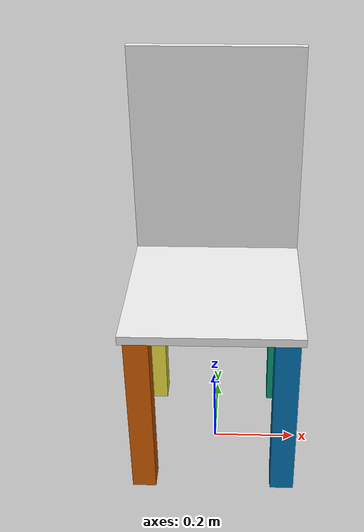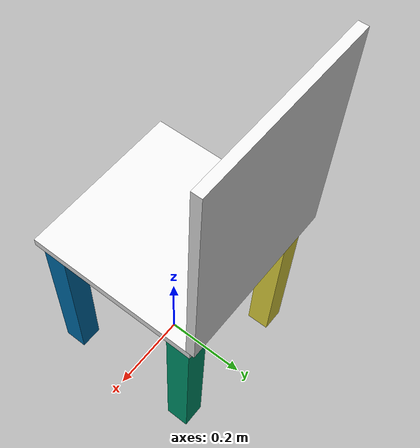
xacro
<?xml version="1.0"?>
<robot name="chair"
       xmlns:xacro="http://www.ros.org/wiki/xacro"
       xmlns:xi="http://www.w3.org/2001/XInclude"
       xmlns:gazebo="http://playerstage.sourceforge.net/gazebo/xmlschema/#gz"
       xmlns:model="http://playerstage.sourceforge.net/gazebo/xmlschema/#model"
       xmlns:sensor="http://playerstage.sourceforge.net/gazebo/xmlschema/#sensor"
       xmlns:body="http://playerstage.sourceforge.net/gazebo/xmlschema/#body"
       xmlns:geom="http://playerstage.sourceforge.net/gazebo/xmlschema/#geom"
       xmlns:joint="http://playerstage.sourceforge.net/gazebo/xmlschema/#joint"
       xmlns:interface="http://playerstage.sourceforge.net/gazebo/xmlschema/#interface"
       xmlns:rendering="http://playerstage.sourceforge.net/gazebo/xmlschema/#rendering"
       xmlns:renderable="http://playerstage.sourceforge.net/gazebo/xmlschema/#renderable"
       xmlns:controller="http://playerstage.sourceforge.net/gazebo/xmlschema/#controller"
       xmlns:physics="http://playerstage.sourceforge.net/gazebo/xmlschema/#physics">

  <xacro:property name="chair_height" value="0.45" />
  <xacro:property name="chair_width" value="0.4" />
  <xacro:property name="chair_depth" value="0.4" />
  <xacro:property name="chair_y" value="0.0" />
  <xacro:property name="chair_z" value="0.0" />
  <xacro:property name="rest_height" value="0.5" />

  <xacro:property name="chair_top_thickness" value="0.02"/>

  <xacro:property name="M_PI" value="3.1415926535897931" />

  <link name="chair_top_link">
    <inertial>
      <mass value="5.0" />
      <origin xyz="0.0 0.0 0.0" />
      <inertia ixx="0" ixy="0"  ixz="0"
               iyy="0" iyz="0"
               izz="0" />
    </inertial>
    <visual>
      <origin xyz="0.0 0.0 ${chair_z+chair_height-chair_top_thickness/2}" />
      <geometry>
        <box size="${chair_width} ${chair_depth} ${chair_top_thickness}" />
      </geometry>
    </visual>
    <collision>
      <origin xyz="0.0 0.0 ${chair_z+chair_height-chair_top_thickness/2}" />
      <geometry>
        <box size="${chair_width} ${chair_depth} ${chair_top_thickness}" />
      </geometry>
    </collision>
  </link>
  <gazebo reference="chair_top_link">
    <material>Gazebo/White</material>
    <mu1>50.0</mu1>
    <mu2>50.0</mu2>
    <kp>1000000.0</kp>
    <kd>1.0</kd>
  </gazebo>

  <link name="chair_rest_link">
    <inertial>
      <mass value="5.0" />
      <origin xyz="0.0 0.0 0.0" />
      <inertia ixx="0" ixy="0"  ixz="0"
               iyy="0" iyz="0"
               izz="0" />
    </inertial>
    <visual>
      <origin xyz="0.0 0.0 0.0" />
      <geometry>
        <box size="${chair_width} ${chair_top_thickness} ${rest_height}" />
      </geometry>
    </visual>
    <collision>
      <origin xyz="0.0 0.0 0.0" />
      <geometry>
        <box size="${chair_width} ${chair_top_thickness} ${rest_height}" />
      </geometry>
    </collision>
  </link>
  <gazebo reference="chair_rest_link">
    <material>Gazebo/White</material>
    <mu1>50.0</mu1>
    <mu2>50.0</mu2>
    <kp>1000000.0</kp>
    <kd>1.0</kd>
  </gazebo>
      <joint name="chair_rest_joint" type="fixed" >
    	<parent link="chair_top_link" />
    	<origin xyz="0.0 ${chair_depth/2} ${chair_z+chair_height+rest_height/2}" rpy="0 0 0" />
        <child link="chair_rest_link" />
      </joint>

    <xacro:macro name="legs" params="suffix parent pos1 pos2">

        <link name="leg_${suffix}_link">
            <inertial>
		<origin xyz="0 0 0" />
                <mass value="3" />
                <inertia  ixx="0" ixy="0" ixz="0"
                          iyy="0" iyz="0"
                          izz="0" />
            </inertial>

            <visual>
                <origin xyz="0 0 0" />
                <geometry>
                    <box size="0.055 0.055 ${chair_height-chair_top_thickness}" />
                </geometry>
            </visual>

            <collision>
                <origin xyz="0 0 0" />
                <geometry>
                    <box size="0.055 0.055 ${chair_height-chair_top_thickness}" />
                </geometry>
            </collision>
        </link>

	<gazebo reference="legs">
		<material>Gazebo/White</material>
		<turnGravityOff>false</turnGravityOff>
	</gazebo>
      <joint name="leg_${suffix}_joint" type="fixed" >
    	<parent link="chair_top_link" />
    	<origin xyz="${0.0+pos1*(chair_width/2-0.0375)} ${chair_y+pos2*(chair_depth/2-0.0375)} ${chair_z+chair_height/2}" rpy="0 0 0" />
        <child link="leg_${suffix}_link" />
      </joint>

  </xacro:macro>
        <legs suffix="left_front" parent="chair_top_link"  pos1="1" pos2="1"/>
	<legs suffix="left_back" parent="chair_top_link"  pos1="-1" pos2="1"/>
        <legs suffix="right_front" parent="chair_top_link"  pos1="1" pos2="-1"/>
	<legs suffix="right_back" parent="chair_top_link"  pos1="-1" pos2="-1"/>

</robot>
